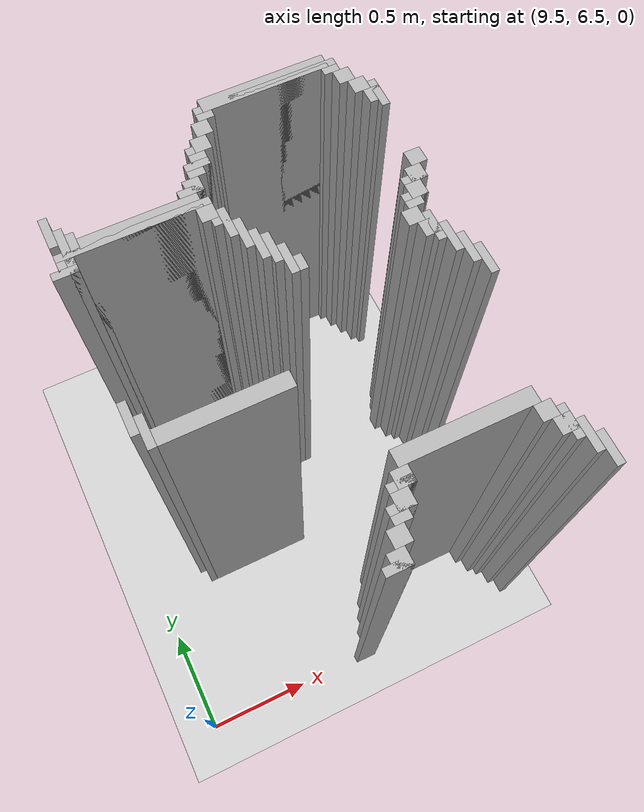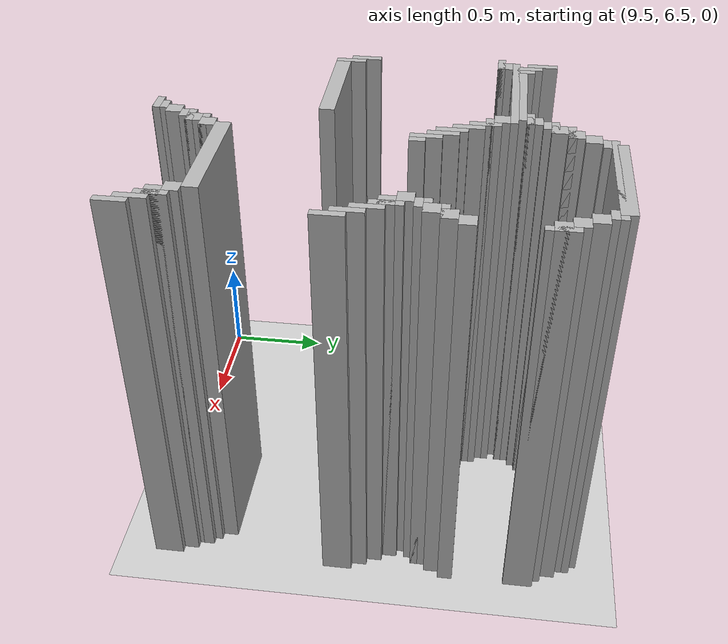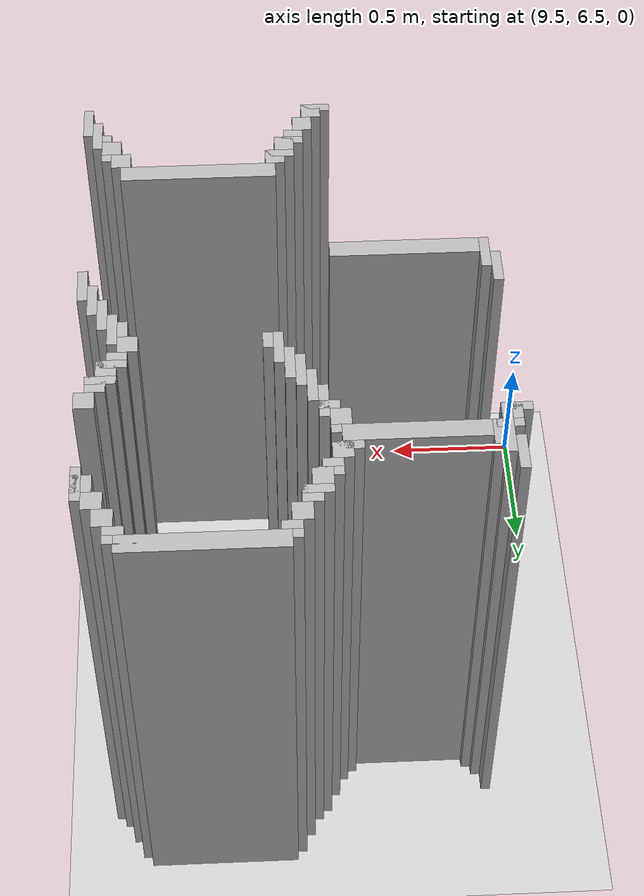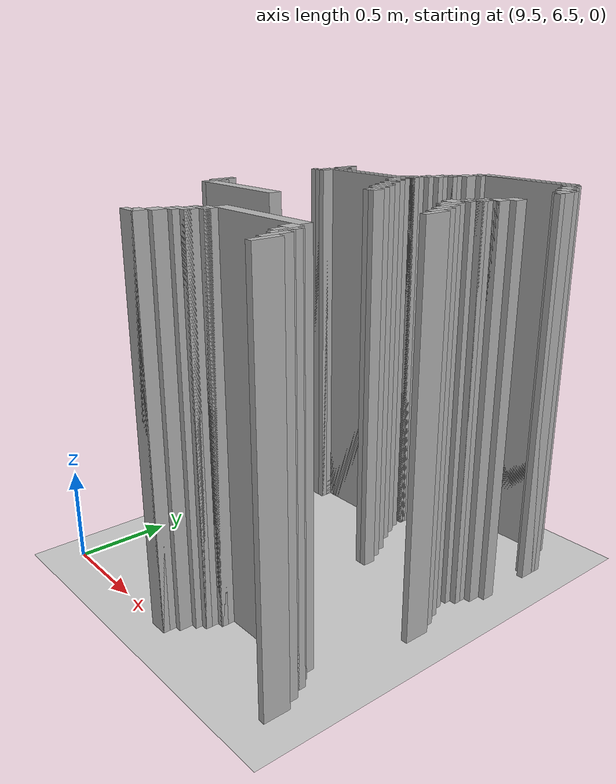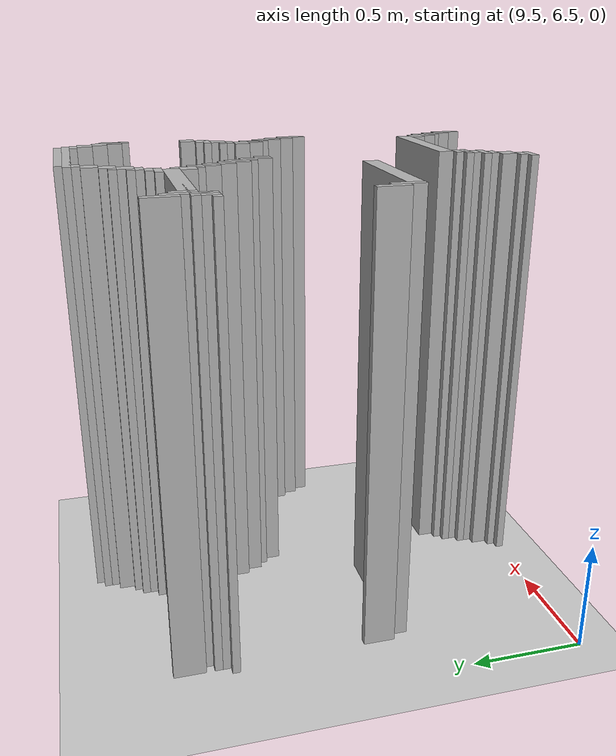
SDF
<sdf version="1.6">
 <world name="slam_world">
  <model name="ground_plane">
   <static>true</static>
   <link name="link">
    <collision name="collision">
     <geometry><plane><normal>0 0 1</normal><size>100 100</size></plane></geometry>
    </collision>
    <visual name="visual">
     <geometry><plane><normal>0 0 1</normal><size>100 100</size></plane></geometry>
     <material>
      <ambient>0.8 0.8 0.8 1</ambient>
      <diffuse>0.8 0.8 0.8 1</diffuse>
      <specular>0.8 0.8 0.8 1</specular>
     </material>
    </visual>
   </link>
  </model>
  <model name="wall_2969">
   <static>true</static>
   <pose>10.788863109048723 8.491879350348027 1.0 0 0 0</pose>
   <link name="link">
    <collision name="collision">
     <geometry><box><size>0.5568445475638051 0.06960556844547564 2.0</size></box></geometry>
    </collision>
    <visual name="visual">
     <geometry><box><size>0.5568445475638051 0.06960556844547564 2.0</size></box></geometry>
     <material><ambient>0.5 0.5 0.5 1</ambient><diffuse>0.7 0.7 0.7 1</diffuse></material>
    </visual>
   </link>
  </model>
  <model name="wall_2982">
   <static>true</static>
   <pose>10.788863109048723 8.474477958236658 1.0 0 0 0</pose>
   <link name="link">
    <collision name="collision">
     <geometry><box><size>0.6264501160092807 0.03480278422273782 2.0</size></box></geometry>
    </collision>
    <visual name="visual">
     <geometry><box><size>0.6264501160092807 0.03480278422273782 2.0</size></box></geometry>
     <material><ambient>0.5 0.5 0.5 1</ambient><diffuse>0.7 0.7 0.7 1</diffuse></material>
    </visual>
   </link>
  </model>
  <model name="wall_2996">
   <static>true</static>
   <pose>10.51044083526682 8.43967517401392 1.0 0 0 0</pose>
   <link name="link">
    <collision name="collision">
     <geometry><box><size>0.06960556844547564 0.03480278422273782 2.0</size></box></geometry>
    </collision>
    <visual name="visual">
     <geometry><box><size>0.06960556844547564 0.03480278422273782 2.0</size></box></geometry>
     <material><ambient>0.5 0.5 0.5 1</ambient><diffuse>0.7 0.7 0.7 1</diffuse></material>
    </visual>
   </link>
  </model>
  <model name="wall_2997">
   <static>true</static>
   <pose>11.067285382830626 8.43967517401392 1.0 0 0 0</pose>
   <link name="link">
    <collision name="collision">
     <geometry><box><size>0.06960556844547564 0.03480278422273782 2.0</size></box></geometry>
    </collision>
    <visual name="visual">
     <geometry><box><size>0.06960556844547564 0.03480278422273782 2.0</size></box></geometry>
     <material><ambient>0.5 0.5 0.5 1</ambient><diffuse>0.7 0.7 0.7 1</diffuse></material>
    </visual>
   </link>
  </model>
  <model name="wall_3011">
   <static>true</static>
   <pose>10.475638051044083 8.387470997679815 1.0 0 0 0</pose>
   <link name="link">
    <collision name="collision">
     <geometry><box><size>0.06960556844547564 0.06960556844547564 2.0</size></box></geometry>
    </collision>
    <visual name="visual">
     <geometry><box><size>0.06960556844547564 0.06960556844547564 2.0</size></box></geometry>
     <material><ambient>0.5 0.5 0.5 1</ambient><diffuse>0.7 0.7 0.7 1</diffuse></material>
    </visual>
   </link>
  </model>
  <model name="wall_3012">
   <static>true</static>
   <pose>11.102088167053363 8.387470997679815 1.0 0 0 0</pose>
   <link name="link">
    <collision name="collision">
     <geometry><box><size>0.06960556844547564 0.06960556844547564 2.0</size></box></geometry>
    </collision>
    <visual name="visual">
     <geometry><box><size>0.06960556844547564 0.06960556844547564 2.0</size></box></geometry>
     <material><ambient>0.5 0.5 0.5 1</ambient><diffuse>0.7 0.7 0.7 1</diffuse></material>
    </visual>
   </link>
  </model>
  <model name="wall_3026">
   <static>true</static>
   <pose>10.440835266821345 8.317865429234338 1.0 0 0 0</pose>
   <link name="link">
    <collision name="collision">
     <geometry><box><size>0.06960556844547564 0.06960556844547564 2.0</size></box></geometry>
    </collision>
    <visual name="visual">
     <geometry><box><size>0.06960556844547564 0.06960556844547564 2.0</size></box></geometry>
     <material><ambient>0.5 0.5 0.5 1</ambient><diffuse>0.7 0.7 0.7 1</diffuse></material>
    </visual>
   </link>
  </model>
  <model name="wall_3027">
   <static>true</static>
   <pose>11.1368909512761 8.317865429234338 1.0 0 0 0</pose>
   <link name="link">
    <collision name="collision">
     <geometry><box><size>0.06960556844547564 0.06960556844547564 2.0</size></box></geometry>
    </collision>
    <visual name="visual">
     <geometry><box><size>0.06960556844547564 0.06960556844547564 2.0</size></box></geometry>
     <material><ambient>0.5 0.5 0.5 1</ambient><diffuse>0.7 0.7 0.7 1</diffuse></material>
    </visual>
   </link>
  </model>
  <model name="wall_3041">
   <static>true</static>
   <pose>10.423433874709977 8.30046403712297 1.0 0 0 0</pose>
   <link name="link">
    <collision name="collision">
     <geometry><box><size>0.10440835266821345 0.03480278422273782 2.0</size></box></geometry>
    </collision>
    <visual name="visual">
     <geometry><box><size>0.10440835266821345 0.03480278422273782 2.0</size></box></geometry>
     <material><ambient>0.5 0.5 0.5 1</ambient><diffuse>0.7 0.7 0.7 1</diffuse></material>
    </visual>
   </link>
  </model>
  <model name="wall_3042">
   <static>true</static>
   <pose>11.189095127610209 8.248259860788863 1.0 0 0 0</pose>
   <link name="link">
    <collision name="collision">
     <geometry><box><size>0.03480278422273782 0.13921113689095127 2.0</size></box></geometry>
    </collision>
    <visual name="visual">
     <geometry><box><size>0.03480278422273782 0.13921113689095127 2.0</size></box></geometry>
     <material><ambient>0.5 0.5 0.5 1</ambient><diffuse>0.7 0.7 0.7 1</diffuse></material>
    </visual>
   </link>
  </model>
  <model name="wall_3052">
   <static>true</static>
   <pose>10.406032482598608 8.248259860788863 1.0 0 0 0</pose>
   <link name="link">
    <collision name="collision">
     <geometry><box><size>0.06960556844547564 0.06960556844547564 2.0</size></box></geometry>
    </collision>
    <visual name="visual">
     <geometry><box><size>0.06960556844547564 0.06960556844547564 2.0</size></box></geometry>
     <material><ambient>0.5 0.5 0.5 1</ambient><diffuse>0.7 0.7 0.7 1</diffuse></material>
    </visual>
   </link>
  </model>
  <model name="wall_3053">
   <static>true</static>
   <pose>11.17169373549884 8.248259860788863 1.0 0 0 0</pose>
   <link name="link">
    <collision name="collision">
     <geometry><box><size>0.06960556844547564 0.06960556844547564 2.0</size></box></geometry>
    </collision>
    <visual name="visual">
     <geometry><box><size>0.06960556844547564 0.06960556844547564 2.0</size></box></geometry>
     <material><ambient>0.5 0.5 0.5 1</ambient><diffuse>0.7 0.7 0.7 1</diffuse></material>
    </visual>
   </link>
  </model>
  <model name="wall_3065">
   <static>true</static>
   <pose>9.762180974477959 8.178654292343387 1.0 0 0 0</pose>
   <link name="link">
    <collision name="collision">
     <geometry><box><size>0.03480278422273782 0.13921113689095127 2.0</size></box></geometry>
    </collision>
    <visual name="visual">
     <geometry><box><size>0.03480278422273782 0.13921113689095127 2.0</size></box></geometry>
     <material><ambient>0.5 0.5 0.5 1</ambient><diffuse>0.7 0.7 0.7 1</diffuse></material>
    </visual>
   </link>
  </model>
  <model name="wall_3066">
   <static>true</static>
   <pose>10.38863109048724 8.230858468677495 1.0 0 0 0</pose>
   <link name="link">
    <collision name="collision">
     <geometry><box><size>0.10440835266821345 0.03480278422273782 2.0</size></box></geometry>
    </collision>
    <visual name="visual">
     <geometry><box><size>0.10440835266821345 0.03480278422273782 2.0</size></box></geometry>
     <material><ambient>0.5 0.5 0.5 1</ambient><diffuse>0.7 0.7 0.7 1</diffuse></material>
    </visual>
   </link>
  </model>
  <model name="wall_3077">
   <static>true</static>
   <pose>10.37122969837587 8.196055684454755 1.0 0 0 0</pose>
   <link name="link">
    <collision name="collision">
     <geometry><box><size>0.06960556844547564 0.03480278422273782 2.0</size></box></geometry>
    </collision>
    <visual name="visual">
     <geometry><box><size>0.06960556844547564 0.03480278422273782 2.0</size></box></geometry>
     <material><ambient>0.5 0.5 0.5 1</ambient><diffuse>0.7 0.7 0.7 1</diffuse></material>
    </visual>
   </link>
  </model>
  <model name="wall_3089">
   <static>true</static>
   <pose>9.796983758700696 8.074245939675174 1.0 0 0 0</pose>
   <link name="link">
    <collision name="collision">
     <geometry><box><size>0.03480278422273782 0.2088167053364269 2.0</size></box></geometry>
    </collision>
    <visual name="visual">
     <geometry><box><size>0.03480278422273782 0.2088167053364269 2.0</size></box></geometry>
     <material><ambient>0.5 0.5 0.5 1</ambient><diffuse>0.7 0.7 0.7 1</diffuse></material>
    </visual>
   </link>
  </model>
  <model name="wall_3090">
   <static>true</static>
   <pose>10.336426914153131 8.14385150812065 1.0 0 0 0</pose>
   <link name="link">
    <collision name="collision">
     <geometry><box><size>0.06960556844547564 0.06960556844547564 2.0</size></box></geometry>
    </collision>
    <visual name="visual">
     <geometry><box><size>0.06960556844547564 0.06960556844547564 2.0</size></box></geometry>
     <material><ambient>0.5 0.5 0.5 1</ambient><diffuse>0.7 0.7 0.7 1</diffuse></material>
    </visual>
   </link>
  </model>
  <model name="wall_3103">
   <static>true</static>
   <pose>9.831786542923433 8.091647331786543 1.0 0 0 0</pose>
   <link name="link">
    <collision name="collision">
     <geometry><box><size>0.03480278422273782 0.10440835266821345 2.0</size></box></geometry>
    </collision>
    <visual name="visual">
     <geometry><box><size>0.03480278422273782 0.10440835266821345 2.0</size></box></geometry>
     <material><ambient>0.5 0.5 0.5 1</ambient><diffuse>0.7 0.7 0.7 1</diffuse></material>
    </visual>
   </link>
  </model>
  <model name="wall_3104">
   <static>true</static>
   <pose>10.319025522041763 8.12645011600928 1.0 0 0 0</pose>
   <link name="link">
    <collision name="collision">
     <geometry><box><size>0.10440835266821345 0.03480278422273782 2.0</size></box></geometry>
    </collision>
    <visual name="visual">
     <geometry><box><size>0.10440835266821345 0.03480278422273782 2.0</size></box></geometry>
     <material><ambient>0.5 0.5 0.5 1</ambient><diffuse>0.7 0.7 0.7 1</diffuse></material>
    </visual>
   </link>
  </model>
  <model name="wall_3116">
   <static>true</static>
   <pose>10.092807424593968 8.074245939675174 1.0 0 0 0</pose>
   <link name="link">
    <collision name="collision">
     <geometry><box><size>0.4872389791183295 0.06960556844547564 2.0</size></box></geometry>
    </collision>
    <visual name="visual">
     <geometry><box><size>0.4872389791183295 0.06960556844547564 2.0</size></box></geometry>
     <material><ambient>0.5 0.5 0.5 1</ambient><diffuse>0.7 0.7 0.7 1</diffuse></material>
    </visual>
   </link>
  </model>
  <model name="wall_3129">
   <static>true</static>
   <pose>10.058004640371228 8.056844547563804 1.0 0 0 0</pose>
   <link name="link">
    <collision name="collision">
     <geometry><box><size>0.6264501160092807 0.03480278422273782 2.0</size></box></geometry>
    </collision>
    <visual name="visual">
     <geometry><box><size>0.6264501160092807 0.03480278422273782 2.0</size></box></geometry>
     <material><ambient>0.5 0.5 0.5 1</ambient><diffuse>0.7 0.7 0.7 1</diffuse></material>
    </visual>
   </link>
  </model>
  <model name="wall_3144">
   <static>true</static>
   <pose>9.779582366589327 8.004640371229698 1.0 0 0 0</pose>
   <link name="link">
    <collision name="collision">
     <geometry><box><size>0.06960556844547564 0.06960556844547564 2.0</size></box></geometry>
    </collision>
    <visual name="visual">
     <geometry><box><size>0.06960556844547564 0.06960556844547564 2.0</size></box></geometry>
     <material><ambient>0.5 0.5 0.5 1</ambient><diffuse>0.7 0.7 0.7 1</diffuse></material>
    </visual>
   </link>
  </model>
  <model name="wall_3145">
   <static>true</static>
   <pose>10.336426914153131 8.004640371229698 1.0 0 0 0</pose>
   <link name="link">
    <collision name="collision">
     <geometry><box><size>0.06960556844547564 0.06960556844547564 2.0</size></box></geometry>
    </collision>
    <visual name="visual">
     <geometry><box><size>0.06960556844547564 0.06960556844547564 2.0</size></box></geometry>
     <material><ambient>0.5 0.5 0.5 1</ambient><diffuse>0.7 0.7 0.7 1</diffuse></material>
    </visual>
   </link>
  </model>
  <model name="wall_3160">
   <static>true</static>
   <pose>9.762180974477959 7.987238979118329 1.0 0 0 0</pose>
   <link name="link">
    <collision name="collision">
     <geometry><box><size>0.10440835266821345 0.03480278422273782 2.0</size></box></geometry>
    </collision>
    <visual name="visual">
     <geometry><box><size>0.10440835266821345 0.03480278422273782 2.0</size></box></geometry>
     <material><ambient>0.5 0.5 0.5 1</ambient><diffuse>0.7 0.7 0.7 1</diffuse></material>
    </visual>
   </link>
  </model>
  <model name="wall_3161">
   <static>true</static>
   <pose>10.38863109048724 7.935034802784222 1.0 0 0 0</pose>
   <link name="link">
    <collision name="collision">
     <geometry><box><size>0.03480278422273782 0.13921113689095127 2.0</size></box></geometry>
    </collision>
    <visual name="visual">
     <geometry><box><size>0.03480278422273782 0.13921113689095127 2.0</size></box></geometry>
     <material><ambient>0.5 0.5 0.5 1</ambient><diffuse>0.7 0.7 0.7 1</diffuse></material>
    </visual>
   </link>
  </model>
  <model name="wall_3174">
   <static>true</static>
   <pose>10.37122969837587 7.952436194895592 1.0 0 0 0</pose>
   <link name="link">
    <collision name="collision">
     <geometry><box><size>0.06960556844547564 0.03480278422273782 2.0</size></box></geometry>
    </collision>
    <visual name="visual">
     <geometry><box><size>0.06960556844547564 0.03480278422273782 2.0</size></box></geometry>
     <material><ambient>0.5 0.5 0.5 1</ambient><diffuse>0.7 0.7 0.7 1</diffuse></material>
    </visual>
   </link>
  </model>
  <model name="wall_3188">
   <static>true</static>
   <pose>10.423433874709977 7.865429234338746 1.0 0 0 0</pose>
   <link name="link">
    <collision name="collision">
     <geometry><box><size>0.03480278422273782 0.13921113689095127 2.0</size></box></geometry>
    </collision>
    <visual name="visual">
     <geometry><box><size>0.03480278422273782 0.13921113689095127 2.0</size></box></geometry>
     <material><ambient>0.5 0.5 0.5 1</ambient><diffuse>0.7 0.7 0.7 1</diffuse></material>
    </visual>
   </link>
  </model>
  <model name="wall_3189">
   <static>true</static>
   <pose>11.17169373549884 7.900232018561485 1.0 0 0 0</pose>
   <link name="link">
    <collision name="collision">
     <geometry><box><size>0.06960556844547564 0.06960556844547564 2.0</size></box></geometry>
    </collision>
    <visual name="visual">
     <geometry><box><size>0.06960556844547564 0.06960556844547564 2.0</size></box></geometry>
     <material><ambient>0.5 0.5 0.5 1</ambient><diffuse>0.7 0.7 0.7 1</diffuse></material>
    </visual>
   </link>
  </model>
  <model name="wall_3204">
   <static>true</static>
   <pose>10.458236658932714 7.795823665893272 1.0 0 0 0</pose>
   <link name="link">
    <collision name="collision">
     <geometry><box><size>0.03480278422273782 0.13921113689095127 2.0</size></box></geometry>
    </collision>
    <visual name="visual">
     <geometry><box><size>0.03480278422273782 0.13921113689095127 2.0</size></box></geometry>
     <material><ambient>0.5 0.5 0.5 1</ambient><diffuse>0.7 0.7 0.7 1</diffuse></material>
    </visual>
   </link>
  </model>
  <model name="wall_3205">
   <static>true</static>
   <pose>11.1368909512761 7.830626450116009 1.0 0 0 0</pose>
   <link name="link">
    <collision name="collision">
     <geometry><box><size>0.06960556844547564 0.06960556844547564 2.0</size></box></geometry>
    </collision>
    <visual name="visual">
     <geometry><box><size>0.06960556844547564 0.06960556844547564 2.0</size></box></geometry>
     <material><ambient>0.5 0.5 0.5 1</ambient><diffuse>0.7 0.7 0.7 1</diffuse></material>
    </visual>
   </link>
  </model>
  <model name="wall_3220">
   <static>true</static>
   <pose>10.493039443155451 7.761020881670533 1.0 0 0 0</pose>
   <link name="link">
    <collision name="collision">
     <geometry><box><size>0.03480278422273782 0.13921113689095127 2.0</size></box></geometry>
    </collision>
    <visual name="visual">
     <geometry><box><size>0.03480278422273782 0.13921113689095127 2.0</size></box></geometry>
     <material><ambient>0.5 0.5 0.5 1</ambient><diffuse>0.7 0.7 0.7 1</diffuse></material>
    </visual>
   </link>
  </model>
  <model name="wall_3221">
   <static>true</static>
   <pose>11.119489559164732 7.81322505800464 1.0 0 0 0</pose>
   <link name="link">
    <collision name="collision">
     <geometry><box><size>0.10440835266821345 0.03480278422273782 2.0</size></box></geometry>
    </collision>
    <visual name="visual">
     <geometry><box><size>0.10440835266821345 0.03480278422273782 2.0</size></box></geometry>
     <material><ambient>0.5 0.5 0.5 1</ambient><diffuse>0.7 0.7 0.7 1</diffuse></material>
    </visual>
   </link>
  </model>
  <model name="wall_3232">
   <static>true</static>
   <pose>11.102088167053363 7.761020881670533 1.0 0 0 0</pose>
   <link name="link">
    <collision name="collision">
     <geometry><box><size>0.06960556844547564 0.06960556844547564 2.0</size></box></geometry>
    </collision>
    <visual name="visual">
     <geometry><box><size>0.06960556844547564 0.06960556844547564 2.0</size></box></geometry>
     <material><ambient>0.5 0.5 0.5 1</ambient><diffuse>0.7 0.7 0.7 1</diffuse></material>
    </visual>
   </link>
  </model>
  <model name="wall_3245">
   <static>true</static>
   <pose>10.52784222737819 7.691415313225058 1.0 0 0 0</pose>
   <link name="link">
    <collision name="collision">
     <geometry><box><size>0.03480278422273782 0.13921113689095127 2.0</size></box></geometry>
    </collision>
    <visual name="visual">
     <geometry><box><size>0.03480278422273782 0.13921113689095127 2.0</size></box></geometry>
     <material><ambient>0.5 0.5 0.5 1</ambient><diffuse>0.7 0.7 0.7 1</diffuse></material>
    </visual>
   </link>
  </model>
  <model name="wall_3246">
   <static>true</static>
   <pose>11.084686774941995 7.743619489559165 1.0 0 0 0</pose>
   <link name="link">
    <collision name="collision">
     <geometry><box><size>0.10440835266821345 0.03480278422273782 2.0</size></box></geometry>
    </collision>
    <visual name="visual">
     <geometry><box><size>0.10440835266821345 0.03480278422273782 2.0</size></box></geometry>
     <material><ambient>0.5 0.5 0.5 1</ambient><diffuse>0.7 0.7 0.7 1</diffuse></material>
    </visual>
   </link>
  </model>
  <model name="wall_3257">
   <static>true</static>
   <pose>11.067285382830626 7.708816705336426 1.0 0 0 0</pose>
   <link name="link">
    <collision name="collision">
     <geometry><box><size>0.06960556844547564 0.03480278422273782 2.0</size></box></geometry>
    </collision>
    <visual name="visual">
     <geometry><box><size>0.06960556844547564 0.03480278422273782 2.0</size></box></geometry>
     <material><ambient>0.5 0.5 0.5 1</ambient><diffuse>0.7 0.7 0.7 1</diffuse></material>
    </visual>
   </link>
  </model>
  <model name="wall_3270">
   <static>true</static>
   <pose>10.562645011600928 7.65661252900232 1.0 0 0 0</pose>
   <link name="link">
    <collision name="collision">
     <geometry><box><size>0.03480278422273782 0.06960556844547564 2.0</size></box></geometry>
    </collision>
    <visual name="visual">
     <geometry><box><size>0.03480278422273782 0.06960556844547564 2.0</size></box></geometry>
     <material><ambient>0.5 0.5 0.5 1</ambient><diffuse>0.7 0.7 0.7 1</diffuse></material>
    </visual>
   </link>
  </model>
  <model name="wall_3271">
   <static>true</static>
   <pose>11.032482598607888 7.65661252900232 1.0 0 0 0</pose>
   <link name="link">
    <collision name="collision">
     <geometry><box><size>0.06960556844547564 0.06960556844547564 2.0</size></box></geometry>
    </collision>
    <visual name="visual">
     <geometry><box><size>0.06960556844547564 0.06960556844547564 2.0</size></box></geometry>
     <material><ambient>0.5 0.5 0.5 1</ambient><diffuse>0.7 0.7 0.7 1</diffuse></material>
    </visual>
   </link>
  </model>
  <model name="wall_3286">
   <static>true</static>
   <pose>11.084686774941995 7.587006960556844 1.0 0 0 0</pose>
   <link name="link">
    <collision name="collision">
     <geometry><box><size>0.03480278422273782 0.13921113689095127 2.0</size></box></geometry>
    </collision>
    <visual name="visual">
     <geometry><box><size>0.03480278422273782 0.13921113689095127 2.0</size></box></geometry>
     <material><ambient>0.5 0.5 0.5 1</ambient><diffuse>0.7 0.7 0.7 1</diffuse></material>
    </visual>
   </link>
  </model>
  <model name="wall_3301">
   <static>true</static>
   <pose>11.067285382830626 7.587006960556844 1.0 0 0 0</pose>
   <link name="link">
    <collision name="collision">
     <geometry><box><size>0.06960556844547564 0.06960556844547564 2.0</size></box></geometry>
    </collision>
    <visual name="visual">
     <geometry><box><size>0.06960556844547564 0.06960556844547564 2.0</size></box></geometry>
     <material><ambient>0.5 0.5 0.5 1</ambient><diffuse>0.7 0.7 0.7 1</diffuse></material>
    </visual>
   </link>
  </model>
  <model name="wall_3317">
   <static>true</static>
   <pose>11.119489559164732 7.517401392111369 1.0 0 0 0</pose>
   <link name="link">
    <collision name="collision">
     <geometry><box><size>0.03480278422273782 0.13921113689095127 2.0</size></box></geometry>
    </collision>
    <visual name="visual">
     <geometry><box><size>0.03480278422273782 0.13921113689095127 2.0</size></box></geometry>
     <material><ambient>0.5 0.5 0.5 1</ambient><diffuse>0.7 0.7 0.7 1</diffuse></material>
    </visual>
   </link>
  </model>
  <model name="wall_3344">
   <static>true</static>
   <pose>11.154292343387471 7.447795823665893 1.0 0 0 0</pose>
   <link name="link">
    <collision name="collision">
     <geometry><box><size>0.03480278422273782 0.13921113689095127 2.0</size></box></geometry>
    </collision>
    <visual name="visual">
     <geometry><box><size>0.03480278422273782 0.13921113689095127 2.0</size></box></geometry>
     <material><ambient>0.5 0.5 0.5 1</ambient><diffuse>0.7 0.7 0.7 1</diffuse></material>
    </visual>
   </link>
  </model>
  <model name="wall_3360">
   <static>true</static>
   <pose>11.189095127610209 7.378190255220417 1.0 0 0 0</pose>
   <link name="link">
    <collision name="collision">
     <geometry><box><size>0.03480278422273782 0.13921113689095127 2.0</size></box></geometry>
    </collision>
    <visual name="visual">
     <geometry><box><size>0.03480278422273782 0.13921113689095127 2.0</size></box></geometry>
     <material><ambient>0.5 0.5 0.5 1</ambient><diffuse>0.7 0.7 0.7 1</diffuse></material>
    </visual>
   </link>
  </model>
  <model name="wall_3375">
   <static>true</static>
   <pose>9.762180974477959 7.34338747099768 1.0 0 0 0</pose>
   <link name="link">
    <collision name="collision">
     <geometry><box><size>0.03480278422273782 0.13921113689095127 2.0</size></box></geometry>
    </collision>
    <visual name="visual">
     <geometry><box><size>0.03480278422273782 0.13921113689095127 2.0</size></box></geometry>
     <material><ambient>0.5 0.5 0.5 1</ambient><diffuse>0.7 0.7 0.7 1</diffuse></material>
    </visual>
   </link>
  </model>
  <model name="wall_3400">
   <static>true</static>
   <pose>9.796983758700696 7.273781902552204 1.0 0 0 0</pose>
   <link name="link">
    <collision name="collision">
     <geometry><box><size>0.03480278422273782 0.13921113689095127 2.0</size></box></geometry>
    </collision>
    <visual name="visual">
     <geometry><box><size>0.03480278422273782 0.13921113689095127 2.0</size></box></geometry>
     <material><ambient>0.5 0.5 0.5 1</ambient><diffuse>0.7 0.7 0.7 1</diffuse></material>
    </visual>
   </link>
  </model>
  <model name="wall_3422">
   <static>true</static>
   <pose>10.075406032482599 7.238979118329466 1.0 0 0 0</pose>
   <link name="link">
    <collision name="collision">
     <geometry><box><size>0.5220417633410672 0.06960556844547564 2.0</size></box></geometry>
    </collision>
    <visual name="visual">
     <geometry><box><size>0.5220417633410672 0.06960556844547564 2.0</size></box></geometry>
     <material><ambient>0.5 0.5 0.5 1</ambient><diffuse>0.7 0.7 0.7 1</diffuse></material>
    </visual>
   </link>
  </model>
  <model name="wall_3542">
   <static>true</static>
   <pose>10.788863109048723 6.821345707656612 1.0 0 0 0</pose>
   <link name="link">
    <collision name="collision">
     <geometry><box><size>0.5568445475638051 0.06960556844547564 2.0</size></box></geometry>
    </collision>
    <visual name="visual">
     <geometry><box><size>0.5568445475638051 0.06960556844547564 2.0</size></box></geometry>
     <material><ambient>0.5 0.5 0.5 1</ambient><diffuse>0.7 0.7 0.7 1</diffuse></material>
    </visual>
   </link>
  </model>
  <model name="wall_3562">
   <static>true</static>
   <pose>10.51044083526682 6.751740139211137 1.0 0 0 0</pose>
   <link name="link">
    <collision name="collision">
     <geometry><box><size>0.06960556844547564 0.06960556844547564 2.0</size></box></geometry>
    </collision>
    <visual name="visual">
     <geometry><box><size>0.06960556844547564 0.06960556844547564 2.0</size></box></geometry>
     <material><ambient>0.5 0.5 0.5 1</ambient><diffuse>0.7 0.7 0.7 1</diffuse></material>
    </visual>
   </link>
  </model>
  <model name="wall_3563">
   <static>true</static>
   <pose>11.067285382830626 6.751740139211137 1.0 0 0 0</pose>
   <link name="link">
    <collision name="collision">
     <geometry><box><size>0.06960556844547564 0.06960556844547564 2.0</size></box></geometry>
    </collision>
    <visual name="visual">
     <geometry><box><size>0.06960556844547564 0.06960556844547564 2.0</size></box></geometry>
     <material><ambient>0.5 0.5 0.5 1</ambient><diffuse>0.7 0.7 0.7 1</diffuse></material>
    </visual>
   </link>
  </model>
  <model name="wall_3575">
   <static>true</static>
   <pose>10.493039443155451 6.734338747099768 1.0 0 0 0</pose>
   <link name="link">
    <collision name="collision">
     <geometry><box><size>0.10440835266821345 0.03480278422273782 2.0</size></box></geometry>
    </collision>
    <visual name="visual">
     <geometry><box><size>0.10440835266821345 0.03480278422273782 2.0</size></box></geometry>
     <material><ambient>0.5 0.5 0.5 1</ambient><diffuse>0.7 0.7 0.7 1</diffuse></material>
    </visual>
   </link>
  </model>
  <model name="wall_3576">
   <static>true</static>
   <pose>11.119489559164732 6.682134570765661 1.0 0 0 0</pose>
   <link name="link">
    <collision name="collision">
     <geometry><box><size>0.03480278422273782 0.13921113689095127 2.0</size></box></geometry>
    </collision>
    <visual name="visual">
     <geometry><box><size>0.03480278422273782 0.13921113689095127 2.0</size></box></geometry>
     <material><ambient>0.5 0.5 0.5 1</ambient><diffuse>0.7 0.7 0.7 1</diffuse></material>
    </visual>
   </link>
  </model>
  <model name="wall_3588">
   <static>true</static>
   <pose>10.475638051044083 6.682134570765661 1.0 0 0 0</pose>
   <link name="link">
    <collision name="collision">
     <geometry><box><size>0.06960556844547564 0.06960556844547564 2.0</size></box></geometry>
    </collision>
    <visual name="visual">
     <geometry><box><size>0.06960556844547564 0.06960556844547564 2.0</size></box></geometry>
     <material><ambient>0.5 0.5 0.5 1</ambient><diffuse>0.7 0.7 0.7 1</diffuse></material>
    </visual>
   </link>
  </model>
  <model name="wall_3589">
   <static>true</static>
   <pose>11.102088167053363 6.682134570765661 1.0 0 0 0</pose>
   <link name="link">
    <collision name="collision">
     <geometry><box><size>0.06960556844547564 0.06960556844547564 2.0</size></box></geometry>
    </collision>
    <visual name="visual">
     <geometry><box><size>0.06960556844547564 0.06960556844547564 2.0</size></box></geometry>
     <material><ambient>0.5 0.5 0.5 1</ambient><diffuse>0.7 0.7 0.7 1</diffuse></material>
    </visual>
   </link>
  </model>
  <model name="wall_3601">
   <static>true</static>
   <pose>10.458236658932714 6.664733178654292 1.0 0 0 0</pose>
   <link name="link">
    <collision name="collision">
     <geometry><box><size>0.10440835266821345 0.03480278422273782 2.0</size></box></geometry>
    </collision>
    <visual name="visual">
     <geometry><box><size>0.10440835266821345 0.03480278422273782 2.0</size></box></geometry>
     <material><ambient>0.5 0.5 0.5 1</ambient><diffuse>0.7 0.7 0.7 1</diffuse></material>
    </visual>
   </link>
  </model>
  <model name="wall_3602">
   <static>true</static>
   <pose>11.154292343387471 6.612529002320185 1.0 0 0 0</pose>
   <link name="link">
    <collision name="collision">
     <geometry><box><size>0.03480278422273782 0.13921113689095127 2.0</size></box></geometry>
    </collision>
    <visual name="visual">
     <geometry><box><size>0.03480278422273782 0.13921113689095127 2.0</size></box></geometry>
     <material><ambient>0.5 0.5 0.5 1</ambient><diffuse>0.7 0.7 0.7 1</diffuse></material>
    </visual>
   </link>
  </model>
  <model name="wall_3609">
   <static>true</static>
   <pose>10.440835266821345 6.629930394431554 1.0 0 0 0</pose>
   <link name="link">
    <collision name="collision">
     <geometry><box><size>0.06960556844547564 0.03480278422273782 2.0</size></box></geometry>
    </collision>
    <visual name="visual">
     <geometry><box><size>0.06960556844547564 0.03480278422273782 2.0</size></box></geometry>
     <material><ambient>0.5 0.5 0.5 1</ambient><diffuse>0.7 0.7 0.7 1</diffuse></material>
    </visual>
   </link>
  </model>
  <model name="wall_3621">
   <static>true</static>
   <pose>10.406032482598608 6.577726218097448 1.0 0 0 0</pose>
   <link name="link">
    <collision name="collision">
     <geometry><box><size>0.06960556844547564 0.06960556844547564 2.0</size></box></geometry>
    </collision>
    <visual name="visual">
     <geometry><box><size>0.06960556844547564 0.06960556844547564 2.0</size></box></geometry>
     <material><ambient>0.5 0.5 0.5 1</ambient><diffuse>0.7 0.7 0.7 1</diffuse></material>
    </visual>
   </link>
  </model>
  <model name="wall_3622">
   <static>true</static>
   <pose>11.189095127610209 6.5429234338747095 1.0 0 0 0</pose>
   <link name="link">
    <collision name="collision">
     <geometry><box><size>0.03480278422273782 0.13921113689095127 2.0</size></box></geometry>
    </collision>
    <visual name="visual">
     <geometry><box><size>0.03480278422273782 0.13921113689095127 2.0</size></box></geometry>
     <material><ambient>0.5 0.5 0.5 1</ambient><diffuse>0.7 0.7 0.7 1</diffuse></material>
    </visual>
   </link>
  </model>
  <model name="wall_3634">
   <static>true</static>
   <pose>10.37122969837587 6.508120649651972 1.0 0 0 0</pose>
   <link name="link">
    <collision name="collision">
     <geometry><box><size>0.06960556844547564 0.06960556844547564 2.0</size></box></geometry>
    </collision>
    <visual name="visual">
     <geometry><box><size>0.06960556844547564 0.06960556844547564 2.0</size></box></geometry>
     <material><ambient>0.5 0.5 0.5 1</ambient><diffuse>0.7 0.7 0.7 1</diffuse></material>
    </visual>
   </link>
  </model>
  <model name="wall_3647">
   <static>true</static>
   <pose>10.3538283062645 6.490719257540603 1.0 0 0 0</pose>
   <link name="link">
    <collision name="collision">
     <geometry><box><size>0.10440835266821345 0.03480278422273782 2.0</size></box></geometry>
    </collision>
    <visual name="visual">
     <geometry><box><size>0.10440835266821345 0.03480278422273782 2.0</size></box></geometry>
     <material><ambient>0.5 0.5 0.5 1</ambient><diffuse>0.7 0.7 0.7 1</diffuse></material>
    </visual>
   </link>
  </model>
 </world>
</sdf>
